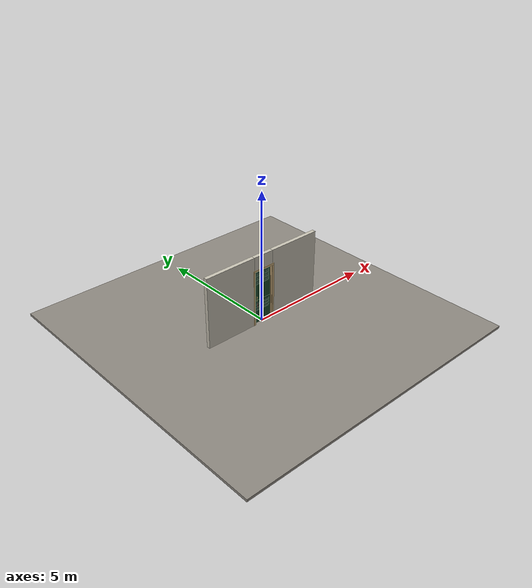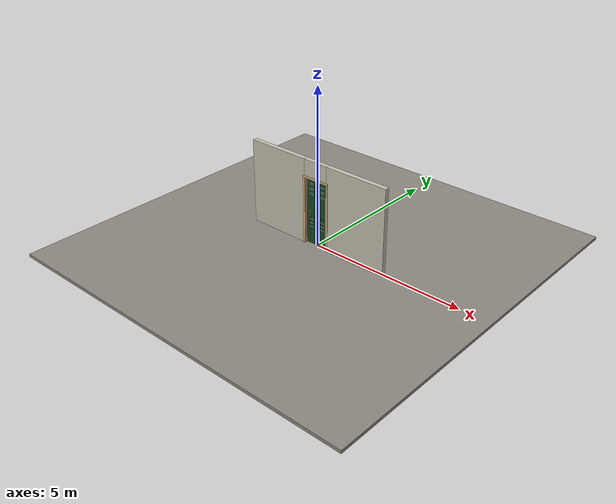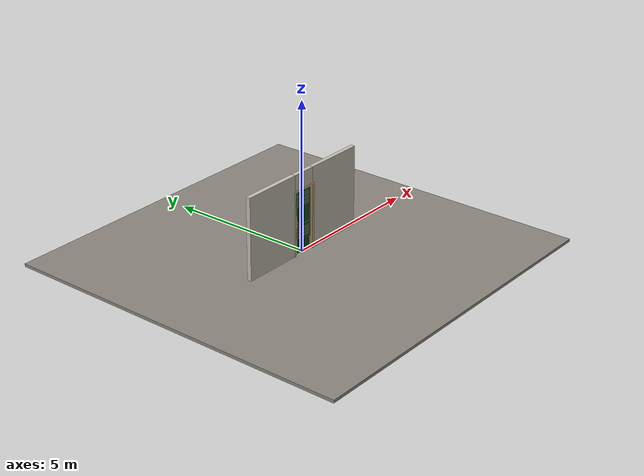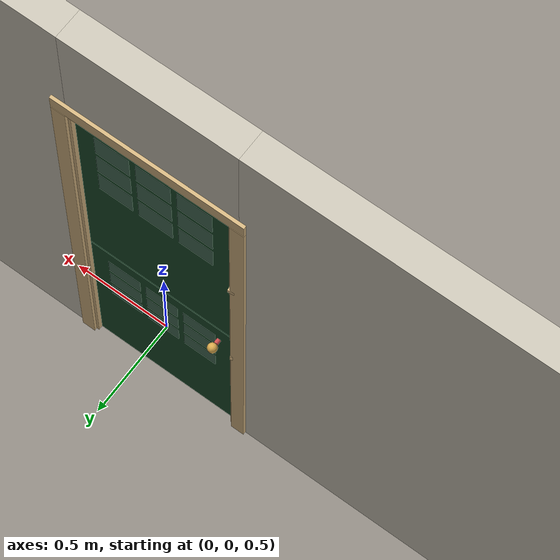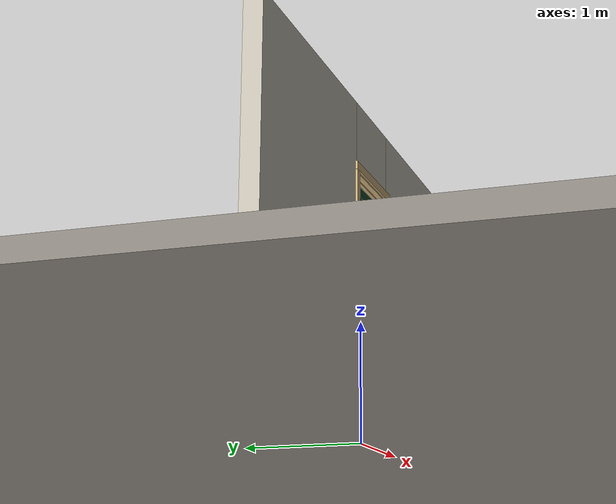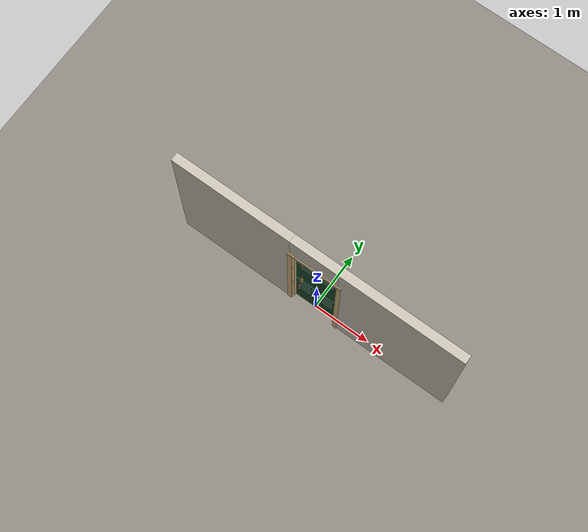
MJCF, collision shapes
<?xml version="1.0" ?>
<mujoco model="db0906_dutch_full">
  <compiler angle="radian" meshdir="../../hardware" texturedir="../../textures" autolimits="true" inertiafromgeom="false"/>
  <option timestep="0.002" integrator="implicitfast" cone="elliptic" impratio="10" noslip_iterations="3">
    <flag multiccd="enable"/>
  </option>
  <size memory="16M"/>
  <default>
    <geom condim="4" solref="0.005 1" solimp="0.95 0.99 0.001"/>
    <joint solreflimit="0.005 1" solimplimit="0.95 0.99 0.001"/>
    <tendon solreflimit="0.005 1"/>
    <equality solref="0.002 1"/>
  </default>
  <visual>
    <headlight ambient="0.4 0.4 0.4" diffuse="0.7 0.7 0.7" specular="0.2 0.2 0.2"/>
    <quality shadowsize="4096"/>
    <map znear="0.01" zfar="60"/>
  </visual>
  <asset>
    <mesh name="handleset_beb5526ad2" file="handleset_beb5526ad2.obj"/>
    <mesh name="hinge_e22b26c0c1" file="hinge_e22b26c0c1.obj"/>
    <mesh name="hinge_jamb_e1d088f8dc" file="hinge_jamb_e1d088f8dc.obj"/>
    <mesh name="knob_d1888f6f03" file="knob_d1888f6f03.obj"/>
    <material name="mat_floor" rgba="0.55 0.53 0.5 1" specular="0.2" shininess="0.15" reflectance="0"/>
    <material name="mat_wall" rgba="0.78 0.76 0.7 1" specular="0.2" shininess="0.1" reflectance="0"/>
    <material name="mat_leaf_lower" rgba="0.1 0.28 0.16 1" specular="0.2" shininess="0.48" reflectance="0"/>
    <material name="mat_glass" rgba="0.85 0.92 0.95 0.25" specular="0.2" shininess="0.95" reflectance="0.1"/>
    <material name="mat_leaf_upper" rgba="0.1 0.28 0.16 1" specular="0.2" shininess="0.48" reflectance="0"/>
    <material name="mat_op_bronze" rgba="0.3 0.22 0.15 1" specular="0.74" shininess="0.5" reflectance="0.36"/>
    <material name="mat_op_brass" rgba="0.85 0.66 0.3 1" specular="0.8" shininess="0.75" reflectance="0.4"/>
    <material name="mat_trim" rgba="0.85 0.66 0.3 1" specular="0.8" shininess="0.75" reflectance="0.4"/>
    <material name="mat_bolt" rgba="0.85 0.66 0.3 1" specular="0.8" shininess="0.75" reflectance="0.4"/>
    <material name="mat_joinbolt" rgba="0.85 0.66 0.3 1" specular="0.8" shininess="0.75" reflectance="0.4"/>
    <material name="mat_frame" rgba="0.82 0.7 0.5 1" specular="0.2" shininess="0.45" reflectance="0"/>
    <material name="mat_hinge" rgba="0.65 0.66 0.68 1" specular="0.74" shininess="0.5" reflectance="0.36"/>
    <texture name="skybox" type="skybox" builtin="gradient" rgb1="0.6 0.7 0.85" rgb2="0.9 0.92 0.95" width="256" height="256"/>
  </asset>
  <worldbody>
    <light name="sun" pos="1.5 -2.5 4" dir="-0.3 0.5 -0.8" directional="true" diffuse="0.8 0.8 0.8" specular="0.3 0.3 0.3" castshadow="true"/>
    <light name="fill" pos="-1.5 2.5 3" dir="0.3 -0.5 -0.7" directional="true" diffuse="0.35 0.35 0.4" castshadow="false"/>
    <camera name="robot_view" pos="0 -2.668312 1.812087" xyaxes="1 0 0 0 0.26963 0.962964" fovy="52"/>
    <camera name="far_view" pos="0 2.607312 1.812087" xyaxes="-1 0 0 0 -0.26963 0.962964" fovy="52"/>
    <camera name="iso" pos="-2.004737 -2.246262 2.234138" xyaxes="0.741536 -0.670913 0 0.242917 0.268487 0.932151" fovy="46"/>
    <camera name="detail_handle" pos="-0.095 -0.882 1.06" xyaxes="0.97561 0.219512 0 -0.070934 0.315262 0.94635" fovy="38"/>
    <geom name="floor" type="box" size="6 6 0.05" pos="0 0 -0.05" material="mat_floor" group="0" contype="1" conaffinity="1" friction="0.8 0.005 0.0001" density="2400"/>
    <geom name="wall_left" type="box" size="1.033 0.0725 1.3735" pos="-1.467 -0.0305 1.3735" material="mat_wall" group="0" contype="1" conaffinity="1" friction="0.6 0.005 0.0001" density="800"/>
    <geom name="wall_right" type="box" size="1.048 0.0725 1.3735" pos="1.452 -0.0305 1.3735" material="mat_wall" group="0" contype="1" conaffinity="1" friction="0.6 0.005 0.0001" density="800"/>
    <geom name="wall_header" type="box" size="0.419 0.0725 0.2755" pos="-0.015 -0.0305 2.4715" material="mat_wall" group="0" contype="1" conaffinity="1" friction="0.6 0.005 0.0001" density="800"/>
    <geom name="jamb_hinge" type="box" size="0.0095 0.0725 1.0735" pos="0.3945 -0.0305 1.0735" material="mat_frame" group="0" contype="1" conaffinity="1" friction="0.6 0.005 0.0001" density="400"/>
    <geom name="strike_840_wall_n" type="box" size="0.0245 0.047575 0.0167" pos="-0.4095 -0.055425 0.84" material="mat_frame" group="0" contype="1" conaffinity="1" friction="0.6 0.005 0.0001" density="400"/>
    <geom name="strike_840_wall_p" type="box" size="0.0245 0.008 0.0167" pos="-0.4095 0.01585 0.84" material="mat_frame" group="0" contype="1" conaffinity="1" friction="0.6 0.005 0.0001" density="400"/>
    <geom name="strike_840_ramp" type="box" size="0.0245 0.020268 0.0167" pos="-0.414908 0.034645 0.84" quat="0.985179 0 0 0.171531" material="mat_frame" group="0" contype="1" conaffinity="1" friction="0.12 0.005 0.0001" density="400"/>
    <geom name="strike_840_back" type="box" size="0.01615 0.00785 0.0167" pos="-0.41785 0 0.84" material="mat_frame" group="0" contype="1" conaffinity="1" friction="0.6 0.005 0.0001" density="400"/>
    <geom name="strike_1547_wall_n" type="box" size="0.0245 0.04775 0.01" pos="-0.4095 -0.05525 1.547" material="mat_frame" group="0" contype="1" conaffinity="1" friction="0.6 0.005 0.0001" density="400"/>
    <geom name="strike_1547_wall_p" type="box" size="0.0245 0.008 0.01" pos="-0.4095 0.0155 1.547" material="mat_frame" group="0" contype="1" conaffinity="1" friction="0.6 0.005 0.0001" density="400"/>
    <geom name="strike_1547_ramp" type="box" size="0.0245 0.019412 0.01" pos="-0.411796 0.039595 1.547" quat="0.997916 0 0 0.064529" material="mat_frame" group="0" contype="1" conaffinity="1" friction="0.12 0.005 0.0001" density="400"/>
    <geom name="strike_1547_ramp_n" type="box" size="0.0245 0.019412 0.01" pos="-0.411796 -0.027595 1.547" quat="0.997916 0 0 -0.064529" material="mat_frame" group="0" contype="1" conaffinity="1" friction="0.12 0.005 0.0001" density="400"/>
    <geom name="strike_1547_back" type="box" size="0.0205 0.0075 0.01" pos="-0.4135 0 1.547" material="mat_frame" group="0" contype="1" conaffinity="1" friction="0.6 0.005 0.0001" density="400"/>
    <geom name="jamb_strike_0" type="box" size="0.0245 0.0725 0.41165" pos="-0.4095 -0.0305 0.41165" material="mat_frame" group="0" contype="1" conaffinity="1" friction="0.6 0.005 0.0001" density="400"/>
    <geom name="jamb_strike_1" type="box" size="0.0245 0.0725 0.34015" pos="-0.4095 -0.0305 1.19685" material="mat_frame" group="0" contype="1" conaffinity="1" friction="0.6 0.005 0.0001" density="400"/>
    <geom name="jamb_strike_2" type="box" size="0.0245 0.0725 0.295" pos="-0.4095 -0.0305 1.852" material="mat_frame" group="0" contype="1" conaffinity="1" friction="0.6 0.005 0.0001" density="400"/>
    <geom name="jamb_head" type="box" size="0.419 0.0725 0.0095" pos="-0.015 -0.0305 2.1565" material="mat_frame" group="0" contype="1" conaffinity="1" friction="0.6 0.005 0.0001" density="400"/>
    <geom name="head_stud" type="box" size="0.419 0.0725 0.015" pos="-0.015 -0.0305 2.181" material="mat_wall" group="0" contype="1" conaffinity="1" friction="0.6 0.005 0.0001" density="500"/>
    <geom name="stop_hinge" type="box" size="0.0055 0.016 1.0735" pos="0.3795 -0.0385 1.0735" material="mat_frame" group="0" contype="1" conaffinity="1" friction="0.6 0.005 0.0001" density="400"/>
    <geom name="stop_strike" type="box" size="0.0055 0.016 1.0735" pos="-0.3795 -0.0385 1.0735" material="mat_frame" group="0" contype="1" conaffinity="1" friction="0.6 0.005 0.0001" density="400"/>
    <geom name="stop_head" type="box" size="0.385 0.016 0.0055" pos="0 -0.0385 2.1415" material="mat_frame" group="0" contype="1" conaffinity="1" friction="0.6 0.005 0.0001" density="400"/>
    <geom name="casing_l_n" type="box" size="0.035 0.008 1.083" pos="-0.434 -0.111 1.0735" material="mat_frame" group="2" contype="0" conaffinity="0" density="400"/>
    <geom name="casing_r_n" type="box" size="0.035 0.008 1.083" pos="0.434 -0.111 1.0735" material="mat_frame" group="2" contype="0" conaffinity="0" density="400"/>
    <geom name="casing_h_n" type="box" size="0.469 0.008 0.035" pos="0 -0.111 2.196" material="mat_frame" group="2" contype="0" conaffinity="0" density="400"/>
    <geom name="casing_l_p" type="box" size="0.035 0.008 1.083" pos="-0.434 0.05 1.0735" material="mat_frame" group="2" contype="0" conaffinity="0" density="400"/>
    <geom name="casing_r_p" type="box" size="0.035 0.008 1.083" pos="0.434 0.05 1.0735" material="mat_frame" group="2" contype="0" conaffinity="0" density="400"/>
    <geom name="casing_h_p" type="box" size="0.469 0.008 0.035" pos="0 0.05 2.196" material="mat_frame" group="2" contype="0" conaffinity="0" density="400"/>
    <geom name="hinge_0_jamb" type="mesh" mesh="hinge_jamb_e1d088f8dc" pos="0.385 0.029 0.262" quat="0 0 0 1" material="mat_hinge" group="1" contype="0" conaffinity="0" density="7850"/>
    <geom name="hinge_1_jamb" type="mesh" mesh="hinge_jamb_e1d088f8dc" pos="0.385 0.029 0.433333" quat="0 0 0 1" material="mat_hinge" group="1" contype="0" conaffinity="0" density="7850"/>
    <geom name="hinge_2_jamb" type="mesh" mesh="hinge_jamb_e1d088f8dc" pos="0.385 0.029 0.604667" quat="0 0 0 1" material="mat_hinge" group="1" contype="0" conaffinity="0" density="7850"/>
    <geom name="hinge_3_jamb" type="mesh" mesh="hinge_jamb_e1d088f8dc" pos="0.385 0.029 0.776" quat="0 0 0 1" material="mat_hinge" group="1" contype="0" conaffinity="0" density="7850"/>
    <geom name="hinge_0_jamb_2" type="mesh" mesh="hinge_jamb_e1d088f8dc" pos="0.385 0.029 1.214" quat="0 0 0 1" material="mat_hinge" group="1" contype="0" conaffinity="0" density="7850"/>
    <geom name="hinge_1_jamb_2" type="mesh" mesh="hinge_jamb_e1d088f8dc" pos="0.385 0.029 1.460667" quat="0 0 0 1" material="mat_hinge" group="1" contype="0" conaffinity="0" density="7850"/>
    <geom name="hinge_2_jamb_2" type="mesh" mesh="hinge_jamb_e1d088f8dc" pos="0.385 0.029 1.707333" quat="0 0 0 1" material="mat_hinge" group="1" contype="0" conaffinity="0" density="7850"/>
    <geom name="hinge_3_jamb_2" type="mesh" mesh="hinge_jamb_e1d088f8dc" pos="0.385 0.029 1.954" quat="0 0 0 1" material="mat_hinge" group="1" contype="0" conaffinity="0" density="7850"/>
    <site name="approach_point" pos="0 -1.5 0" quat="1 0 0 0" size="0.05" rgba="0.2 0.9 0.2 0.5" group="4"/>
    <site name="goal_point" pos="0 1.5 0" quat="1 0 0 0" size="0.05" rgba="0.2 0.9 0.2 0.5" group="4"/>
    <site name="door_plane_center" pos="0 0 1.0735" quat="1 0 0 0" size="0.02" rgba="0.2 0.9 0.2 0.5" group="4"/>
    <body name="leaf_lower" pos="0.385 0 0">
      <inertial pos="-0.347418 -0.016794 0.658365" mass="9.688186" quat="0.680445 -0.695724 0.124857 0.193322" diaginertia="0.193078298 1.269353604 1.453098551"/>
      <joint name="leaf_lower_hinge" type="hinge" axis="0 0 -1" pos="-0.003 0.029 0" limited="true" range="0 1.745329" damping="0.179937" frictionloss="0.201087" armature="0.02"/>
      <geom name="leaf_lower_slab" type="box" size="0.381 0.022 0.472" pos="-0.384 0 0.484" material="mat_leaf_lower" group="0" contype="1" conaffinity="1" friction="0.4 0.005 0.0001" density="1"/>
      <geom name="leaf_lower_glass_0" type="box" size="0.087 0.0228 0.046167" pos="-0.18 0 0.575167" material="mat_glass" group="1" contype="0" conaffinity="0" density="1"/>
      <geom name="leaf_lower_glass_1" type="box" size="0.087 0.0228 0.046167" pos="-0.384 0 0.575167" material="mat_glass" group="1" contype="0" conaffinity="0" density="1"/>
      <geom name="leaf_lower_glass_2" type="box" size="0.087 0.0228 0.046167" pos="-0.588 0 0.575167" material="mat_glass" group="1" contype="0" conaffinity="0" density="1"/>
      <geom name="leaf_lower_glass_3" type="box" size="0.087 0.0228 0.046167" pos="-0.18 0 0.6975" material="mat_glass" group="1" contype="0" conaffinity="0" density="1"/>
      <geom name="leaf_lower_glass_4" type="box" size="0.087 0.0228 0.046167" pos="-0.384 0 0.6975" material="mat_glass" group="1" contype="0" conaffinity="0" density="1"/>
      <geom name="leaf_lower_glass_5" type="box" size="0.087 0.0228 0.046167" pos="-0.588 0 0.6975" material="mat_glass" group="1" contype="0" conaffinity="0" density="1"/>
      <geom name="leaf_lower_glass_6" type="box" size="0.087 0.0228 0.046167" pos="-0.18 0 0.819833" material="mat_glass" group="1" contype="0" conaffinity="0" density="1"/>
      <geom name="leaf_lower_glass_7" type="box" size="0.087 0.0228 0.046167" pos="-0.384 0 0.819833" material="mat_glass" group="1" contype="0" conaffinity="0" density="1"/>
      <geom name="leaf_lower_glass_8" type="box" size="0.087 0.0228 0.046167" pos="-0.588 0 0.819833" material="mat_glass" group="1" contype="0" conaffinity="0" density="1"/>
      <geom name="lower_handleset_n" type="mesh" mesh="handleset_beb5526ad2" pos="-0.66 -0.022 0.78" quat="0.707107 0.707107 0 0" material="mat_op_bronze" group="1" contype="0" conaffinity="0" density="3000"/>
      <geom name="lower_handleset_col_n" type="capsule" size="0.011 0.09" pos="-0.66 -0.082 0.78" material="mat_op_bronze" group="3" contype="1" conaffinity="1" rgba="0.8 0.3 0.3 0.25" friction="0.7 0.01 0.0001" density="3000"/>
      <geom name="lower_latch_bolt_faceplate" type="box" size="0.0006 0.01235 0.0267" pos="-0.7644 0 0.84" material="mat_bolt" group="1" contype="0" conaffinity="0" density="8500"/>
      <geom name="join_keeper_leg_n" type="box" size="0.007 0.0025 0.013" pos="-0.6565 -0.035 0.93" quat="-0.5 -0.5 -0.5 0.5" material="mat_joinbolt" group="0" contype="1" conaffinity="1" friction="0.6 0.005 0.0001" density="7800"/>
      <geom name="join_keeper_leg_p" type="box" size="0.007 0.0025 0.013" pos="-0.6335 -0.035 0.93" quat="-0.5 -0.5 -0.5 0.5" material="mat_joinbolt" group="0" contype="1" conaffinity="1" friction="0.6 0.005 0.0001" density="7800"/>
      <geom name="join_keeper_bridge" type="box" size="0.007 0.014 0.0025" pos="-0.645 -0.0455 0.93" quat="-0.5 -0.5 -0.5 0.5" material="mat_joinbolt" group="0" contype="1" conaffinity="1" friction="0.6 0.005 0.0001" density="7800"/>
      <geom name="join_keeper_base" type="box" size="0.013 0.02 0.001" pos="-0.645 -0.023 0.93" quat="-0.5 -0.5 -0.5 0.5" material="mat_joinbolt" group="1" contype="0" conaffinity="0" density="7800"/>
      <geom name="hinge_0" type="mesh" mesh="hinge_e22b26c0c1" pos="0 0.029 0.262" quat="0 0 0 1" material="mat_hinge" group="1" contype="0" conaffinity="0" density="7850"/>
      <geom name="hinge_1" type="mesh" mesh="hinge_e22b26c0c1" pos="0 0.029 0.433333" quat="0 0 0 1" material="mat_hinge" group="1" contype="0" conaffinity="0" density="7850"/>
      <geom name="hinge_2" type="mesh" mesh="hinge_e22b26c0c1" pos="0 0.029 0.604667" quat="0 0 0 1" material="mat_hinge" group="1" contype="0" conaffinity="0" density="7850"/>
      <geom name="hinge_3" type="mesh" mesh="hinge_e22b26c0c1" pos="0 0.029 0.776" quat="0 0 0 1" material="mat_hinge" group="1" contype="0" conaffinity="0" density="7850"/>
      <site name="lower_handleset_grip_n" pos="-0.66 -0.082 0.78" quat="1 0 0 0" size="0.012" rgba="0.2 0.9 0.2 0.5" group="4"/>
      <body name="lower_handle" pos="-0.695 0 0.84">
        <inertial pos="0 0.052948 0" mass="0.60261" quat="0.5 0.5 0.5 0.5" diaginertia="0.000156736 0.000451151 0.000451151"/>
        <joint name="lower_handle_hinge" type="hinge" axis="0 1 0" limited="true" range="0 0.87" damping="0.142525" frictionloss="0.038" stiffness="0.5" springref="-0.5" armature="0.01"/>
        <geom name="lower_handle_spindle" type="cylinder" size="0.006 0.03" pos="0 0 0" quat="0.707107 -0.707107 0 0" material="mat_op_brass" group="1" contype="0" conaffinity="0" density="7850"/>
        <geom name="lower_handle_knob_p" type="mesh" mesh="knob_d1888f6f03" pos="0 0.022 0" quat="0 0 0.707107 0.707107" material="mat_op_brass" group="1" contype="0" conaffinity="0" density="3000"/>
        <geom name="lower_handle_knob_col_p" type="sphere" size="0.0243" pos="0 0.0685 0" material="mat_op_brass" group="0" contype="1" conaffinity="1" friction="0.9 0.01 0.0001" density="3000"/>
        <geom name="lower_handle_knob_neck_p" type="cylinder" size="0.011 0.012" pos="0 0.034 0" quat="0.707107 -0.707107 0 0" material="mat_op_brass" group="3" contype="1" conaffinity="1" rgba="0.8 0.3 0.3 0.25" friction="0.6 0.005 0.0001" density="3000"/>
        <site name="lower_handle_grip_p" pos="0 0.0685 0" quat="1 0 0 0" size="0.012" rgba="0.2 0.9 0.2 0.5" group="4"/>
      </body>
      <body name="lower_latch_bolt" pos="-0.765 0 0.84">
        <inertial pos="0.00865 0 0" mass="0.041419" quat="0.92388 0.382683 0 0" diaginertia="0.000000798 0.000005598 0.000005598"/>
        <joint name="lower_latch_bolt_slide" type="slide" axis="1 0 0" limited="true" range="0 0.0127" damping="2" frictionloss="0.3" stiffness="300" springref="-0.008333" armature="0.1"/>
        <geom name="lower_latch_bolt_capsule" type="capsule" size="0.00635 0.015" pos="0.00865 0 0" quat="0.707107 0 -0.707107 0" material="mat_bolt" group="0" contype="1" conaffinity="1" friction="0.2 0.005 0.0001" density="8500"/>
      </body>
    </body>
    <body name="leaf_upper" pos="0.385 0 0">
      <inertial pos="-0.096301 0.011567 1.521302" mass="12.177372" quat="0.384939 0.34633 0.614565 -0.595137" diaginertia="0.412340002 1.43946878 1.846057494"/>
      <joint name="leaf_upper_hinge" type="hinge" axis="0 0 -1" pos="-0.003 0.029 0" limited="true" range="0 1.745329" damping="0.179937" frictionloss="0.201087" armature="0.02"/>
      <geom name="leaf_upper_slab" type="box" size="0.381 0.022 0.585" pos="-0.384 0 1.549" material="mat_leaf_upper" group="0" contype="1" conaffinity="1" friction="0.4 0.005 0.0001" density="1"/>
      <geom name="leaf_upper_glass_0" type="box" size="0.087 0.0228 0.065" pos="-0.18 0 1.659" material="mat_glass" group="1" contype="0" conaffinity="0" density="1"/>
      <geom name="leaf_upper_glass_1" type="box" size="0.087 0.0228 0.065" pos="-0.384 0 1.659" material="mat_glass" group="1" contype="0" conaffinity="0" density="1"/>
      <geom name="leaf_upper_glass_2" type="box" size="0.087 0.0228 0.065" pos="-0.588 0 1.659" material="mat_glass" group="1" contype="0" conaffinity="0" density="1"/>
      <geom name="leaf_upper_glass_3" type="box" size="0.087 0.0228 0.065" pos="-0.18 0 1.819" material="mat_glass" group="1" contype="0" conaffinity="0" density="1"/>
      <geom name="leaf_upper_glass_4" type="box" size="0.087 0.0228 0.065" pos="-0.384 0 1.819" material="mat_glass" group="1" contype="0" conaffinity="0" density="1"/>
      <geom name="leaf_upper_glass_5" type="box" size="0.087 0.0228 0.065" pos="-0.588 0 1.819" material="mat_glass" group="1" contype="0" conaffinity="0" density="1"/>
      <geom name="leaf_upper_glass_6" type="box" size="0.087 0.0228 0.065" pos="-0.18 0 1.979" material="mat_glass" group="1" contype="0" conaffinity="0" density="1"/>
      <geom name="leaf_upper_glass_7" type="box" size="0.087 0.0228 0.065" pos="-0.384 0 1.979" material="mat_glass" group="1" contype="0" conaffinity="0" density="1"/>
      <geom name="leaf_upper_glass_8" type="box" size="0.087 0.0228 0.065" pos="-0.588 0 1.979" material="mat_glass" group="1" contype="0" conaffinity="0" density="1"/>
      <geom name="upper_catch_faceplate" type="box" size="0.0006 0.012 0.02" pos="-0.7644 0 1.547" material="mat_bolt" group="1" contype="0" conaffinity="0" density="8500"/>
      <geom name="join_bolt_plate" type="box" size="0.064 0.019 0.001" pos="-0.645 -0.023 1.036" quat="-0.5 -0.5 -0.5 0.5" material="mat_joinbolt" group="1" contype="0" conaffinity="0" density="7800"/>
      <geom name="join_bolt_guide_0_leg_n" type="box" size="0.006 0.002 0.0125" pos="-0.656 -0.0345 0.98" quat="-0.5 -0.5 -0.5 0.5" material="mat_joinbolt" group="1" contype="0" conaffinity="0" density="7800"/>
      <geom name="join_bolt_guide_0_leg_p" type="box" size="0.006 0.002 0.0125" pos="-0.634 -0.0345 0.98" quat="-0.5 -0.5 -0.5 0.5" material="mat_joinbolt" group="1" contype="0" conaffinity="0" density="7800"/>
      <geom name="join_bolt_guide_0_bridge" type="box" size="0.006 0.013 0.002" pos="-0.645 -0.045 0.98" quat="-0.5 -0.5 -0.5 0.5" material="mat_joinbolt" group="1" contype="0" conaffinity="0" density="7800"/>
      <geom name="join_bolt_guide_1_leg_n" type="box" size="0.006 0.002 0.0125" pos="-0.656 -0.0345 1.09" quat="-0.5 -0.5 -0.5 0.5" material="mat_joinbolt" group="1" contype="0" conaffinity="0" density="7800"/>
      <geom name="join_bolt_guide_1_leg_p" type="box" size="0.006 0.002 0.0125" pos="-0.634 -0.0345 1.09" quat="-0.5 -0.5 -0.5 0.5" material="mat_joinbolt" group="1" contype="0" conaffinity="0" density="7800"/>
      <geom name="join_bolt_guide_1_bridge" type="box" size="0.006 0.013 0.002" pos="-0.645 -0.045 1.09" quat="-0.5 -0.5 -0.5 0.5" material="mat_joinbolt" group="1" contype="0" conaffinity="0" density="7800"/>
      <geom name="hinge_0_2" type="mesh" mesh="hinge_e22b26c0c1" pos="0 0.029 1.214" quat="0 0 0 1" material="mat_hinge" group="1" contype="0" conaffinity="0" density="7850"/>
      <geom name="hinge_1_2" type="mesh" mesh="hinge_e22b26c0c1" pos="0 0.029 1.460667" quat="0 0 0 1" material="mat_hinge" group="1" contype="0" conaffinity="0" density="7850"/>
      <geom name="hinge_2_2" type="mesh" mesh="hinge_e22b26c0c1" pos="0 0.029 1.707333" quat="0 0 0 1" material="mat_hinge" group="1" contype="0" conaffinity="0" density="7850"/>
      <geom name="hinge_3_2" type="mesh" mesh="hinge_e22b26c0c1" pos="0 0.029 1.954" quat="0 0 0 1" material="mat_hinge" group="1" contype="0" conaffinity="0" density="7850"/>
      <body name="upper_catch" pos="-0.765 0 1.547">
        <inertial pos="0.013 0 0" mass="0.02884" quat="0 0 -0.707107 0.707107" diaginertia="0.000000491 0.000002465 0.000002465"/>
        <joint name="upper_catch_slide" type="slide" axis="1 0 0" limited="true" range="0 0.004" damping="2" frictionloss="0.3" stiffness="4000" springref="-0.00375" armature="0.1"/>
        <geom name="upper_catch_capsule" type="capsule" size="0.006 0.011" pos="0.013 0 0" quat="0.707107 0 -0.707107 0" material="mat_bolt" group="0" contype="1" conaffinity="1" friction="0.2 0.005 0.0001" density="8500"/>
      </body>
      <body name="join_bolt" pos="-0.645 -0.034 0.964">
        <inertial pos="0 -0.00492 0.075264" mass="0.111784" quat="-0.065075 0.704106 -0.065075 0.704106" diaginertia="0.000009833 0.000100603 0.000108548"/>
        <joint name="join_bolt_slide" type="slide" axis="0 0 1" limited="true" range="0 0.05" damping="1" frictionloss="1" armature="0.1" ref="0.05"/>
        <geom name="join_bolt_rod" type="capsule" size="0.006 0.044" pos="0 0 0.066" quat="0 1 0 0" material="mat_joinbolt" group="0" contype="1" conaffinity="1" friction="0.6 0.005 0.0001" density="7850"/>
        <geom name="join_bolt_knob" type="capsule" size="0.005 0.01" pos="0 -0.015 0.105" quat="0.707107 0.707107 0 0" material="mat_joinbolt" group="0" contype="1" conaffinity="1" friction="0.6 0.005 0.0001" density="7850"/>
        <geom name="join_bolt_knob_end" type="sphere" size="0.00675" pos="0 -0.03 0.105" material="mat_joinbolt" group="1" contype="0" conaffinity="0" density="7850"/>
        <site name="join_bolt_grip" pos="0 -0.034 0.105" quat="1 0 0 0" size="0.012" rgba="0.2 0.9 0.2 0.5" group="4"/>
      </body>
    </body>
  </worldbody>
  <tendon>
    <fixed name="lower_latch_bolt_coupling" limited="true" range="0 10">
      <joint joint="lower_latch_bolt_slide" coef="1"/>
      <joint joint="lower_handle_hinge" coef="-0.039688"/>
    </fixed>
  </tendon>
  <sensor>
    <jointpos name="leaf_lower_hinge_pos" joint="leaf_lower_hinge"/>
    <jointvel name="leaf_lower_hinge_vel" joint="leaf_lower_hinge"/>
    <jointpos name="leaf_upper_hinge_pos" joint="leaf_upper_hinge"/>
    <jointvel name="leaf_upper_hinge_vel" joint="leaf_upper_hinge"/>
    <jointpos name="lower_handle_hinge_pos" joint="lower_handle_hinge"/>
    <jointvel name="lower_handle_hinge_vel" joint="lower_handle_hinge"/>
    <jointpos name="lower_latch_bolt_slide_pos" joint="lower_latch_bolt_slide"/>
    <jointvel name="lower_latch_bolt_slide_vel" joint="lower_latch_bolt_slide"/>
    <jointpos name="upper_catch_slide_pos" joint="upper_catch_slide"/>
    <jointvel name="upper_catch_slide_vel" joint="upper_catch_slide"/>
    <jointpos name="join_bolt_slide_pos" joint="join_bolt_slide"/>
    <jointvel name="join_bolt_slide_vel" joint="join_bolt_slide"/>
  </sensor>
</mujoco>
